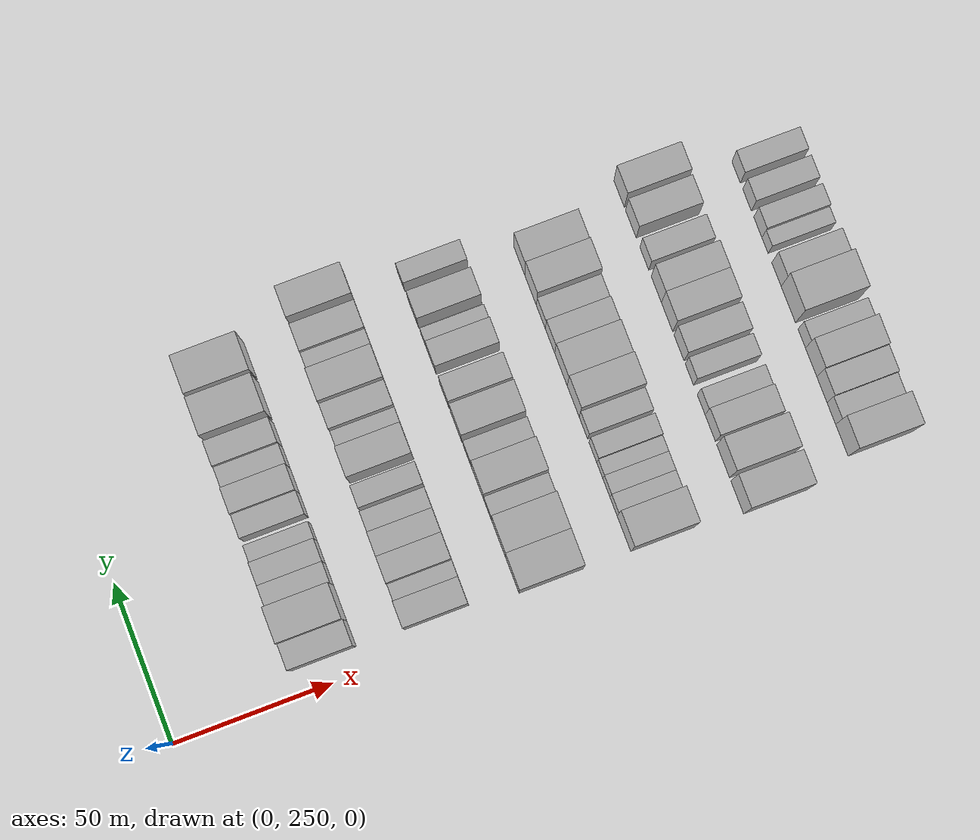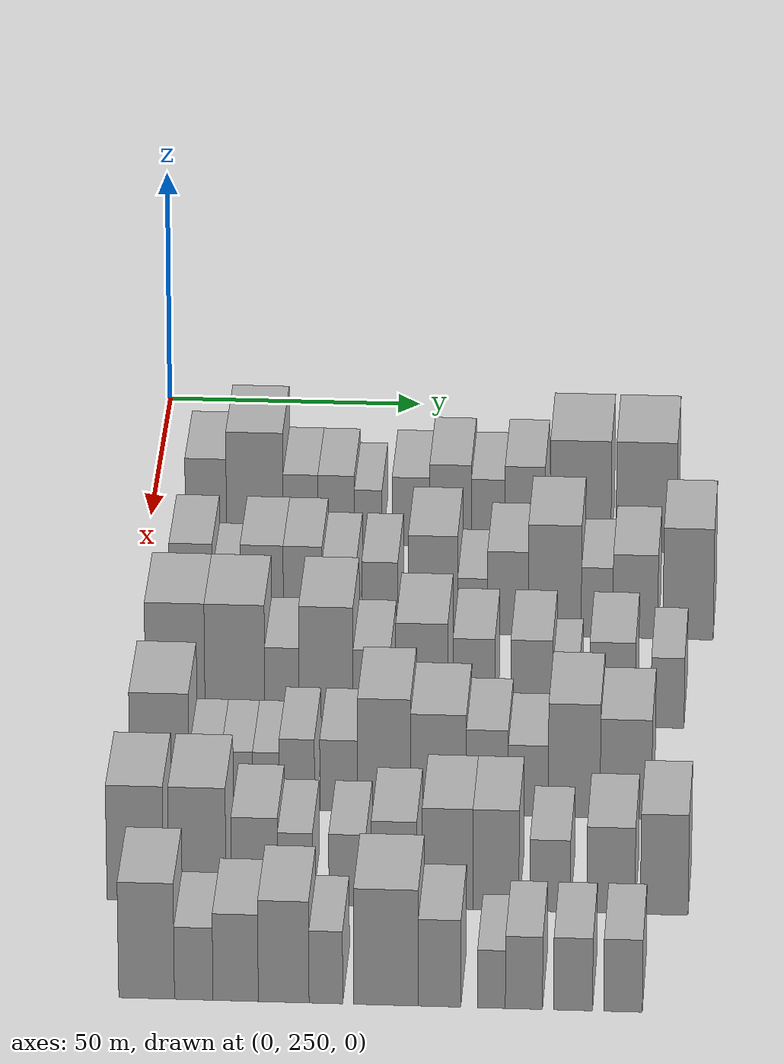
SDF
<sdf version="1.6">
 <world name="default">
  <model name="building_89">
   <static>1</static>
   <pose>50.0000 261.5314 0 0.000000 0.000000 0.000000</pose>
   <link name="link">
    <pose>0 0 9.00 0 0 0</pose>
    <collision name="collision"><geometry><box><size>20.0000 8.0141 18.0000</size></box></geometry></collision>
    <visual name="visual">
     <cast_shadows>0</cast_shadows>
     <geometry><box><size>20.0000 8.0141 18.0000</size></box></geometry>
     <material>
      <script>
       <uri>model://HANNAS_wall/materials/scripts</uri>
       <uri>model://HANNAS_wall/materials/textures</uri>
       <name>vrc/HANNAS_wall</name>
      </script>
     </material>
    </visual>
   </link>
  </model>
  <model name="building_90">
   <static>1</static>
   <pose>50.0000 271.0741 0 0.000000 0.000000 0.000000</pose>
   <link name="link">
    <pose>0 0 12.00 0 0 0</pose>
    <collision name="collision"><geometry><box><size>20.0000 11.0714 24.0000</size></box></geometry></collision>
    <visual name="visual">
     <cast_shadows>0</cast_shadows>
     <geometry><box><size>20.0000 11.0714 24.0000</size></box></geometry>
     <material>
      <script>
       <uri>model://HANNAS_wall/materials/scripts</uri>
       <uri>model://HANNAS_wall/materials/textures</uri>
       <name>vrc/HANNAS_wall</name>
      </script>
     </material>
    </visual>
   </link>
  </model>
  <model name="building_91">
   <static>1</static>
   <pose>50.0000 280.0107 0 0.000000 0.000000 0.000000</pose>
   <link name="link">
    <pose>0 0 7.50 0 0 0</pose>
    <collision name="collision"><geometry><box><size>20.0000 6.8019 15.0000</size></box></geometry></collision>
    <visual name="visual">
     <cast_shadows>0</cast_shadows>
     <geometry><box><size>20.0000 6.8019 15.0000</size></box></geometry>
     <material>
      <script>
       <uri>model://HANNAS_wall/materials/scripts</uri>
       <uri>model://HANNAS_wall/materials/textures</uri>
       <name>vrc/HANNAS_wall</name>
      </script>
     </material>
    </visual>
   </link>
  </model>
  <model name="building_92">
   <static>1</static>
   <pose>50.0000 286.9624 0 0.000000 0.000000 0.000000</pose>
   <link name="link">
    <pose>0 0 7.50 0 0 0</pose>
    <collision name="collision"><geometry><box><size>20.0000 7.1014 15.0000</size></box></geometry></collision>
    <visual name="visual">
     <cast_shadows>0</cast_shadows>
     <geometry><box><size>20.0000 7.1014 15.0000</size></box></geometry>
     <material>
      <script>
       <uri>model://HANNAS_wall/materials/scripts</uri>
       <uri>model://HANNAS_wall/materials/textures</uri>
       <name>vrc/HANNAS_wall</name>
      </script>
     </material>
    </visual>
   </link>
  </model>
  <model name="building_93">
   <static>1</static>
   <pose>50.0000 293.2071 0 0.000000 0.000000 0.000000</pose>
   <link name="link">
    <pose>0 0 6.00 0 0 0</pose>
    <collision name="collision"><geometry><box><size>20.0000 5.3881 12.0000</size></box></geometry></collision>
    <visual name="visual">
     <cast_shadows>0</cast_shadows>
     <geometry><box><size>20.0000 5.3881 12.0000</size></box></geometry>
     <material>
      <script>
       <uri>model://HANNAS_wall/materials/scripts</uri>
       <uri>model://HANNAS_wall/materials/textures</uri>
       <name>vrc/HANNAS_wall</name>
      </script>
     </material>
    </visual>
   </link>
  </model>
  <model name="building_94">
   <static>1</static>
   <pose>50.0000 301.5619 0 0.000000 0.000000 0.000000</pose>
   <link name="link">
    <pose>0 0 7.50 0 0 0</pose>
    <collision name="collision"><geometry><box><size>20.0000 7.3214 15.0000</size></box></geometry></collision>
    <visual name="visual">
     <cast_shadows>0</cast_shadows>
     <geometry><box><size>20.0000 7.3214 15.0000</size></box></geometry>
     <material>
      <script>
       <uri>model://HANNAS_wall/materials/scripts</uri>
       <uri>model://HANNAS_wall/materials/textures</uri>
       <name>vrc/HANNAS_wall</name>
      </script>
     </material>
    </visual>
   </link>
  </model>
  <model name="building_95">
   <static>1</static>
   <pose>50.0000 309.2662 0 0.000000 0.000000 0.000000</pose>
   <link name="link">
    <pose>0 0 9.00 0 0 0</pose>
    <collision name="collision"><geometry><box><size>20.0000 8.0872 18.0000</size></box></geometry></collision>
    <visual name="visual">
     <cast_shadows>0</cast_shadows>
     <geometry><box><size>20.0000 8.0872 18.0000</size></box></geometry>
     <material>
      <script>
       <uri>model://HANNAS_wall/materials/scripts</uri>
       <uri>model://HANNAS_wall/materials/textures</uri>
       <name>vrc/HANNAS_wall</name>
      </script>
     </material>
    </visual>
   </link>
  </model>
  <model name="building_96">
   <static>1</static>
   <pose>50.0000 316.5932 0 0.000000 0.000000 0.000000</pose>
   <link name="link">
    <pose>0 0 7.50 0 0 0</pose>
    <collision name="collision"><geometry><box><size>20.0000 6.5667 15.0000</size></box></geometry></collision>
    <visual name="visual">
     <cast_shadows>0</cast_shadows>
     <geometry><box><size>20.0000 6.5667 15.0000</size></box></geometry>
     <material>
      <script>
       <uri>model://HANNAS_wall/materials/scripts</uri>
       <uri>model://HANNAS_wall/materials/textures</uri>
       <name>vrc/HANNAS_wall</name>
      </script>
     </material>
    </visual>
   </link>
  </model>
  <model name="building_97">
   <static>1</static>
   <pose>50.0000 323.7812 0 0.000000 0.000000 0.000000</pose>
   <link name="link">
    <pose>0 0 9.00 0 0 0</pose>
    <collision name="collision"><geometry><box><size>20.0000 7.8093 18.0000</size></box></geometry></collision>
    <visual name="visual">
     <cast_shadows>0</cast_shadows>
     <geometry><box><size>20.0000 7.8093 18.0000</size></box></geometry>
     <material>
      <script>
       <uri>model://HANNAS_wall/materials/scripts</uri>
       <uri>model://HANNAS_wall/materials/textures</uri>
       <name>vrc/HANNAS_wall</name>
      </script>
     </material>
    </visual>
   </link>
  </model>
  <model name="building_98">
   <static>1</static>
   <pose>50.0000 334.6082 0 0.000000 0.000000 0.000000</pose>
   <link name="link">
    <pose>0 0 12.00 0 0 0</pose>
    <collision name="collision"><geometry><box><size>20.0000 11.8448 24.0000</size></box></geometry></collision>
    <visual name="visual">
     <cast_shadows>0</cast_shadows>
     <geometry><box><size>20.0000 11.8448 24.0000</size></box></geometry>
     <material>
      <script>
       <uri>model://HANNAS_wall/materials/scripts</uri>
       <uri>model://HANNAS_wall/materials/textures</uri>
       <name>vrc/HANNAS_wall</name>
      </script>
     </material>
    </visual>
   </link>
  </model>
  <model name="building_99">
   <static>1</static>
   <pose>50.0000 347.4312 0 0.000000 0.000000 0.000000</pose>
   <link name="link">
    <pose>0 0 12.00 0 0 0</pose>
    <collision name="collision"><geometry><box><size>20.0000 11.8011 24.0000</size></box></geometry></collision>
    <visual name="visual">
     <cast_shadows>0</cast_shadows>
     <geometry><box><size>20.0000 11.8011 24.0000</size></box></geometry>
     <material>
      <script>
       <uri>model://HANNAS_wall/materials/scripts</uri>
       <uri>model://HANNAS_wall/materials/textures</uri>
       <name>vrc/HANNAS_wall</name>
      </script>
     </material>
    </visual>
   </link>
  </model>
  <model name="building_216">
   <static>1</static>
   <pose>85.0000 261.2198 0 0.000000 0.000000 0.000000</pose>
   <link name="link">
    <pose>0 0 9.00 0 0 0</pose>
    <collision name="collision"><geometry><box><size>20.0000 8.2589 18.0000</size></box></geometry></collision>
    <visual name="visual">
     <cast_shadows>0</cast_shadows>
     <geometry><box><size>20.0000 8.2589 18.0000</size></box></geometry>
     <material>
      <script>
       <uri>model://HANNAS_wall/materials/scripts</uri>
       <uri>model://HANNAS_wall/materials/textures</uri>
       <name>vrc/HANNAS_wall</name>
      </script>
     </material>
    </visual>
   </link>
  </model>
  <model name="building_217">
   <static>1</static>
   <pose>85.0000 268.0439 0 0.000000 0.000000 0.000000</pose>
   <link name="link">
    <pose>0 0 6.00 0 0 0</pose>
    <collision name="collision"><geometry><box><size>20.0000 5.3894 12.0000</size></box></geometry></collision>
    <visual name="visual">
     <cast_shadows>0</cast_shadows>
     <geometry><box><size>20.0000 5.3894 12.0000</size></box></geometry>
     <material>
      <script>
       <uri>model://HANNAS_wall/materials/scripts</uri>
       <uri>model://HANNAS_wall/materials/textures</uri>
       <name>vrc/HANNAS_wall</name>
      </script>
     </material>
    </visual>
   </link>
  </model>
  <model name="building_218">
   <static>1</static>
   <pose>85.0000 274.8579 0 0.000000 0.000000 0.000000</pose>
   <link name="link">
    <pose>0 0 9.00 0 0 0</pose>
    <collision name="collision"><geometry><box><size>20.0000 8.2386 18.0000</size></box></geometry></collision>
    <visual name="visual">
     <cast_shadows>0</cast_shadows>
     <geometry><box><size>20.0000 8.2386 18.0000</size></box></geometry>
     <material>
      <script>
       <uri>model://HANNAS_wall/materials/scripts</uri>
       <uri>model://HANNAS_wall/materials/textures</uri>
       <name>vrc/HANNAS_wall</name>
      </script>
     </material>
    </visual>
   </link>
  </model>
  <model name="building_219">
   <static>1</static>
   <pose>85.0000 282.7073 0 0.000000 0.000000 0.000000</pose>
   <link name="link">
    <pose>0 0 9.00 0 0 0</pose>
    <collision name="collision"><geometry><box><size>20.0000 7.4603 18.0000</size></box></geometry></collision>
    <visual name="visual">
     <cast_shadows>0</cast_shadows>
     <geometry><box><size>20.0000 7.4603 18.0000</size></box></geometry>
     <material>
      <script>
       <uri>model://HANNAS_wall/materials/scripts</uri>
       <uri>model://HANNAS_wall/materials/textures</uri>
       <name>vrc/HANNAS_wall</name>
      </script>
     </material>
    </visual>
   </link>
  </model>
  <model name="building_220">
   <static>1</static>
   <pose>85.0000 289.7360 0 0.000000 0.000000 0.000000</pose>
   <link name="link">
    <pose>0 0 7.50 0 0 0</pose>
    <collision name="collision"><geometry><box><size>20.0000 6.5971 15.0000</size></box></geometry></collision>
    <visual name="visual">
     <cast_shadows>0</cast_shadows>
     <geometry><box><size>20.0000 6.5971 15.0000</size></box></geometry>
     <material>
      <script>
       <uri>model://HANNAS_wall/materials/scripts</uri>
       <uri>model://HANNAS_wall/materials/textures</uri>
       <name>vrc/HANNAS_wall</name>
      </script>
     </material>
    </visual>
   </link>
  </model>
  <model name="building_221">
   <static>1</static>
   <pose>85.0000 297.4981 0 0.000000 0.000000 0.000000</pose>
   <link name="link">
    <pose>0 0 7.50 0 0 0</pose>
    <collision name="collision"><geometry><box><size>20.0000 6.9273 15.0000</size></box></geometry></collision>
    <visual name="visual">
     <cast_shadows>0</cast_shadows>
     <geometry><box><size>20.0000 6.9273 15.0000</size></box></geometry>
     <material>
      <script>
       <uri>model://HANNAS_wall/materials/scripts</uri>
       <uri>model://HANNAS_wall/materials/textures</uri>
       <name>vrc/HANNAS_wall</name>
      </script>
     </material>
    </visual>
   </link>
  </model>
  <model name="building_222">
   <static>1</static>
   <pose>85.0000 307.7016 0 0.000000 0.000000 0.000000</pose>
   <link name="link">
    <pose>0 0 10.50 0 0 0</pose>
    <collision name="collision"><geometry><box><size>20.0000 9.4795 21.0000</size></box></geometry></collision>
    <visual name="visual">
     <cast_shadows>0</cast_shadows>
     <geometry><box><size>20.0000 9.4795 21.0000</size></box></geometry>
     <material>
      <script>
       <uri>model://HANNAS_wall/materials/scripts</uri>
       <uri>model://HANNAS_wall/materials/textures</uri>
       <name>vrc/HANNAS_wall</name>
      </script>
     </material>
    </visual>
   </link>
  </model>
  <model name="building_223">
   <static>1</static>
   <pose>85.0000 315.3012 0 0.000000 0.000000 0.000000</pose>
   <link name="link">
    <pose>0 0 6.00 0 0 0</pose>
    <collision name="collision"><geometry><box><size>20.0000 5.7197 12.0000</size></box></geometry></collision>
    <visual name="visual">
     <cast_shadows>0</cast_shadows>
     <geometry><box><size>20.0000 5.7197 12.0000</size></box></geometry>
     <material>
      <script>
       <uri>model://HANNAS_wall/materials/scripts</uri>
       <uri>model://HANNAS_wall/materials/textures</uri>
       <name>vrc/HANNAS_wall</name>
      </script>
     </material>
    </visual>
   </link>
  </model>
  <model name="building_224">
   <static>1</static>
   <pose>85.0000 322.0758 0 0.000000 0.000000 0.000000</pose>
   <link name="link">
    <pose>0 0 9.00 0 0 0</pose>
    <collision name="collision"><geometry><box><size>20.0000 7.8295 18.0000</size></box></geometry></collision>
    <visual name="visual">
     <cast_shadows>0</cast_shadows>
     <geometry><box><size>20.0000 7.8295 18.0000</size></box></geometry>
     <material>
      <script>
       <uri>model://HANNAS_wall/materials/scripts</uri>
       <uri>model://HANNAS_wall/materials/textures</uri>
       <name>vrc/HANNAS_wall</name>
      </script>
     </material>
    </visual>
   </link>
  </model>
  <model name="building_225">
   <static>1</static>
   <pose>85.0000 331.0811 0 0.000000 0.000000 0.000000</pose>
   <link name="link">
    <pose>0 0 12.00 0 0 0</pose>
    <collision name="collision"><geometry><box><size>20.0000 10.1811 24.0000</size></box></geometry></collision>
    <visual name="visual">
     <cast_shadows>0</cast_shadows>
     <geometry><box><size>20.0000 10.1811 24.0000</size></box></geometry>
     <material>
      <script>
       <uri>model://HANNAS_wall/materials/scripts</uri>
       <uri>model://HANNAS_wall/materials/textures</uri>
       <name>vrc/HANNAS_wall</name>
      </script>
     </material>
    </visual>
   </link>
  </model>
  <model name="building_226">
   <static>1</static>
   <pose>85.0000 339.2125 0 0.000000 0.000000 0.000000</pose>
   <link name="link">
    <pose>0 0 7.50 0 0 0</pose>
    <collision name="collision"><geometry><box><size>20.0000 6.0816 15.0000</size></box></geometry></collision>
    <visual name="visual">
     <cast_shadows>0</cast_shadows>
     <geometry><box><size>20.0000 6.0816 15.0000</size></box></geometry>
     <material>
      <script>
       <uri>model://HANNAS_wall/materials/scripts</uri>
       <uri>model://HANNAS_wall/materials/textures</uri>
       <name>vrc/HANNAS_wall</name>
      </script>
     </material>
    </visual>
   </link>
  </model>
  <model name="building_227">
   <static>1</static>
   <pose>85.0000 346.5526 0 0.000000 0.000000 0.000000</pose>
   <link name="link">
    <pose>0 0 9.00 0 0 0</pose>
    <collision name="collision"><geometry><box><size>20.0000 8.5988 18.0000</size></box></geometry></collision>
    <visual name="visual">
     <cast_shadows>0</cast_shadows>
     <geometry><box><size>20.0000 8.5988 18.0000</size></box></geometry>
     <material>
      <script>
       <uri>model://HANNAS_wall/materials/scripts</uri>
       <uri>model://HANNAS_wall/materials/textures</uri>
       <name>vrc/HANNAS_wall</name>
      </script>
     </material>
    </visual>
   </link>
  </model>
  <model name="building_228">
   <static>1</static>
   <pose>85.0000 356.6743 0 0.000000 0.000000 0.000000</pose>
   <link name="link">
    <pose>0 0 12.00 0 0 0</pose>
    <collision name="collision"><geometry><box><size>20.0000 9.6445 24.0000</size></box></geometry></collision>
    <visual name="visual">
     <cast_shadows>0</cast_shadows>
     <geometry><box><size>20.0000 9.6445 24.0000</size></box></geometry>
     <material>
      <script>
       <uri>model://HANNAS_wall/materials/scripts</uri>
       <uri>model://HANNAS_wall/materials/textures</uri>
       <name>vrc/HANNAS_wall</name>
      </script>
     </material>
    </visual>
   </link>
  </model>
  <model name="building_347">
   <static>1</static>
   <pose>120.0000 260.8102 0 0.000000 0.000000 0.000000</pose>
   <link name="link">
    <pose>0 0 12.00 0 0 0</pose>
    <collision name="collision"><geometry><box><size>20.0000 11.2559 24.0000</size></box></geometry></collision>
    <visual name="visual">
     <cast_shadows>0</cast_shadows>
     <geometry><box><size>20.0000 11.2559 24.0000</size></box></geometry>
     <material>
      <script>
       <uri>model://HANNAS_wall/materials/scripts</uri>
       <uri>model://HANNAS_wall/materials/textures</uri>
       <name>vrc/HANNAS_wall</name>
      </script>
     </material>
    </visual>
   </link>
  </model>
  <model name="building_348">
   <static>1</static>
   <pose>120.0000 272.1087 0 0.000000 0.000000 0.000000</pose>
   <link name="link">
    <pose>0 0 12.00 0 0 0</pose>
    <collision name="collision"><geometry><box><size>20.0000 11.3410 24.0000</size></box></geometry></collision>
    <visual name="visual">
     <cast_shadows>0</cast_shadows>
     <geometry><box><size>20.0000 11.3410 24.0000</size></box></geometry>
     <material>
      <script>
       <uri>model://HANNAS_wall/materials/scripts</uri>
       <uri>model://HANNAS_wall/materials/textures</uri>
       <name>vrc/HANNAS_wall</name>
      </script>
     </material>
    </visual>
   </link>
  </model>
  <model name="building_349">
   <static>1</static>
   <pose>120.0000 281.0226 0 0.000000 0.000000 0.000000</pose>
   <link name="link">
    <pose>0 0 7.50 0 0 0</pose>
    <collision name="collision"><geometry><box><size>20.0000 6.4868 15.0000</size></box></geometry></collision>
    <visual name="visual">
     <cast_shadows>0</cast_shadows>
     <geometry><box><size>20.0000 6.4868 15.0000</size></box></geometry>
     <material>
      <script>
       <uri>model://HANNAS_wall/materials/scripts</uri>
       <uri>model://HANNAS_wall/materials/textures</uri>
       <name>vrc/HANNAS_wall</name>
      </script>
     </material>
    </visual>
   </link>
  </model>
  <model name="building_350">
   <static>1</static>
   <pose>120.0000 289.3847 0 0.000000 0.000000 0.000000</pose>
   <link name="link">
    <pose>0 0 12.00 0 0 0</pose>
    <collision name="collision"><geometry><box><size>20.0000 10.2375 24.0000</size></box></geometry></collision>
    <visual name="visual">
     <cast_shadows>0</cast_shadows>
     <geometry><box><size>20.0000 10.2375 24.0000</size></box></geometry>
     <material>
      <script>
       <uri>model://HANNAS_wall/materials/scripts</uri>
       <uri>model://HANNAS_wall/materials/textures</uri>
       <name>vrc/HANNAS_wall</name>
      </script>
     </material>
    </visual>
   </link>
  </model>
  <model name="building_351">
   <static>1</static>
   <pose>120.0000 298.0388 0 0.000000 0.000000 0.000000</pose>
   <link name="link">
    <pose>0 0 7.50 0 0 0</pose>
    <collision name="collision"><geometry><box><size>20.0000 7.0707 15.0000</size></box></geometry></collision>
    <visual name="visual">
     <cast_shadows>0</cast_shadows>
     <geometry><box><size>20.0000 7.0707 15.0000</size></box></geometry>
     <material>
      <script>
       <uri>model://HANNAS_wall/materials/scripts</uri>
       <uri>model://HANNAS_wall/materials/textures</uri>
       <name>vrc/HANNAS_wall</name>
      </script>
     </material>
    </visual>
   </link>
  </model>
  <model name="building_352">
   <static>1</static>
   <pose>120.0000 307.4713 0 0.000000 0.000000 0.000000</pose>
   <link name="link">
    <pose>0 0 10.50 0 0 0</pose>
    <collision name="collision"><geometry><box><size>20.0000 9.7944 21.0000</size></box></geometry></collision>
    <visual name="visual">
     <cast_shadows>0</cast_shadows>
     <geometry><box><size>20.0000 9.7944 21.0000</size></box></geometry>
     <material>
      <script>
       <uri>model://HANNAS_wall/materials/scripts</uri>
       <uri>model://HANNAS_wall/materials/textures</uri>
       <name>vrc/HANNAS_wall</name>
      </script>
     </material>
    </visual>
   </link>
  </model>
  <model name="building_353">
   <static>1</static>
   <pose>120.0000 317.3173 0 0.000000 0.000000 0.000000</pose>
   <link name="link">
    <pose>0 0 9.00 0 0 0</pose>
    <collision name="collision"><geometry><box><size>20.0000 7.8975 18.0000</size></box></geometry></collision>
    <visual name="visual">
     <cast_shadows>0</cast_shadows>
     <geometry><box><size>20.0000 7.8975 18.0000</size></box></geometry>
     <material>
      <script>
       <uri>model://HANNAS_wall/materials/scripts</uri>
       <uri>model://HANNAS_wall/materials/textures</uri>
       <name>vrc/HANNAS_wall</name>
      </script>
     </material>
    </visual>
   </link>
  </model>
  <model name="building_354">
   <static>1</static>
   <pose>120.0000 328.2179 0 0.000000 0.000000 0.000000</pose>
   <link name="link">
    <pose>0 0 9.00 0 0 0</pose>
    <collision name="collision"><geometry><box><size>20.0000 7.9038 18.0000</size></box></geometry></collision>
    <visual name="visual">
     <cast_shadows>0</cast_shadows>
     <geometry><box><size>20.0000 7.9038 18.0000</size></box></geometry>
     <material>
      <script>
       <uri>model://HANNAS_wall/materials/scripts</uri>
       <uri>model://HANNAS_wall/materials/textures</uri>
       <name>vrc/HANNAS_wall</name>
      </script>
     </material>
    </visual>
   </link>
  </model>
  <model name="building_355">
   <static>1</static>
   <pose>120.0000 334.6608 0 0.000000 0.000000 0.000000</pose>
   <link name="link">
    <pose>0 0 6.00 0 0 0</pose>
    <collision name="collision"><geometry><box><size>20.0000 4.9818 12.0000</size></box></geometry></collision>
    <visual name="visual">
     <cast_shadows>0</cast_shadows>
     <geometry><box><size>20.0000 4.9818 12.0000</size></box></geometry>
     <material>
      <script>
       <uri>model://HANNAS_wall/materials/scripts</uri>
       <uri>model://HANNAS_wall/materials/textures</uri>
       <name>vrc/HANNAS_wall</name>
      </script>
     </material>
    </visual>
   </link>
  </model>
  <model name="building_356">
   <static>1</static>
   <pose>120.0000 343.4624 0 0.000000 0.000000 0.000000</pose>
   <link name="link">
    <pose>0 0 9.00 0 0 0</pose>
    <collision name="collision"><geometry><box><size>20.0000 8.6214 18.0000</size></box></geometry></collision>
    <visual name="visual">
     <cast_shadows>0</cast_shadows>
     <geometry><box><size>20.0000 8.6214 18.0000</size></box></geometry>
     <material>
      <script>
       <uri>model://HANNAS_wall/materials/scripts</uri>
       <uri>model://HANNAS_wall/materials/textures</uri>
       <name>vrc/HANNAS_wall</name>
      </script>
     </material>
    </visual>
   </link>
  </model>
  <model name="building_357">
   <static>1</static>
   <pose>120.0000 353.9014 0 0.000000 0.000000 0.000000</pose>
   <link name="link">
    <pose>0 0 7.50 0 0 0</pose>
    <collision name="collision"><geometry><box><size>20.0000 6.2566 15.0000</size></box></geometry></collision>
    <visual name="visual">
     <cast_shadows>0</cast_shadows>
     <geometry><box><size>20.0000 6.2566 15.0000</size></box></geometry>
     <material>
      <script>
       <uri>model://HANNAS_wall/materials/scripts</uri>
       <uri>model://HANNAS_wall/materials/textures</uri>
       <name>vrc/HANNAS_wall</name>
      </script>
     </material>
    </visual>
   </link>
  </model>
  <model name="building_479">
   <static>1</static>
   <pose>155.0000 260.5624 0 0.000000 0.000000 0.000000</pose>
   <link name="link">
    <pose>0 0 12.00 0 0 0</pose>
    <collision name="collision"><geometry><box><size>20.0000 11.0706 24.0000</size></box></geometry></collision>
    <visual name="visual">
     <cast_shadows>0</cast_shadows>
     <geometry><box><size>20.0000 11.0706 24.0000</size></box></geometry>
     <material>
      <script>
       <uri>model://HANNAS_wall/materials/scripts</uri>
       <uri>model://HANNAS_wall/materials/textures</uri>
       <name>vrc/HANNAS_wall</name>
      </script>
     </material>
    </visual>
   </link>
  </model>
  <model name="building_480">
   <static>1</static>
   <pose>155.0000 269.0767 0 0.000000 0.000000 0.000000</pose>
   <link name="link">
    <pose>0 0 6.00 0 0 0</pose>
    <collision name="collision"><geometry><box><size>20.0000 5.9579 12.0000</size></box></geometry></collision>
    <visual name="visual">
     <cast_shadows>0</cast_shadows>
     <geometry><box><size>20.0000 5.9579 12.0000</size></box></geometry>
     <material>
      <script>
       <uri>model://HANNAS_wall/materials/scripts</uri>
       <uri>model://HANNAS_wall/materials/textures</uri>
       <name>vrc/HANNAS_wall</name>
      </script>
     </material>
    </visual>
   </link>
  </model>
  <model name="building_481">
   <static>1</static>
   <pose>155.0000 274.9768 0 0.000000 0.000000 0.000000</pose>
   <link name="link">
    <pose>0 0 6.00 0 0 0</pose>
    <collision name="collision"><geometry><box><size>20.0000 5.8423 12.0000</size></box></geometry></collision>
    <visual name="visual">
     <cast_shadows>0</cast_shadows>
     <geometry><box><size>20.0000 5.8423 12.0000</size></box></geometry>
     <material>
      <script>
       <uri>model://HANNAS_wall/materials/scripts</uri>
       <uri>model://HANNAS_wall/materials/textures</uri>
       <name>vrc/HANNAS_wall</name>
      </script>
     </material>
    </visual>
   </link>
  </model>
  <model name="building_482">
   <static>1</static>
   <pose>155.0000 280.3876 0 0.000000 0.000000 0.000000</pose>
   <link name="link">
    <pose>0 0 6.00 0 0 0</pose>
    <collision name="collision"><geometry><box><size>20.0000 4.9793 12.0000</size></box></geometry></collision>
    <visual name="visual">
     <cast_shadows>0</cast_shadows>
     <geometry><box><size>20.0000 4.9793 12.0000</size></box></geometry>
     <material>
      <script>
       <uri>model://HANNAS_wall/materials/scripts</uri>
       <uri>model://HANNAS_wall/materials/textures</uri>
       <name>vrc/HANNAS_wall</name>
      </script>
     </material>
    </visual>
   </link>
  </model>
  <model name="building_483">
   <static>1</static>
   <pose>155.0000 286.1504 0 0.000000 0.000000 0.000000</pose>
   <link name="link">
    <pose>0 0 7.50 0 0 0</pose>
    <collision name="collision"><geometry><box><size>20.0000 6.5463 15.0000</size></box></geometry></collision>
    <visual name="visual">
     <cast_shadows>0</cast_shadows>
     <geometry><box><size>20.0000 6.5463 15.0000</size></box></geometry>
     <material>
      <script>
       <uri>model://HANNAS_wall/materials/scripts</uri>
       <uri>model://HANNAS_wall/materials/textures</uri>
       <name>vrc/HANNAS_wall</name>
      </script>
     </material>
    </visual>
   </link>
  </model>
  <model name="building_484">
   <static>1</static>
   <pose>155.0000 293.9375 0 0.000000 0.000000 0.000000</pose>
   <link name="link">
    <pose>0 0 7.50 0 0 0</pose>
    <collision name="collision"><geometry><box><size>20.0000 7.0280 15.0000</size></box></geometry></collision>
    <visual name="visual">
     <cast_shadows>0</cast_shadows>
     <geometry><box><size>20.0000 7.0280 15.0000</size></box></geometry>
     <material>
      <script>
       <uri>model://HANNAS_wall/materials/scripts</uri>
       <uri>model://HANNAS_wall/materials/textures</uri>
       <name>vrc/HANNAS_wall</name>
      </script>
     </material>
    </visual>
   </link>
  </model>
  <model name="building_485">
   <static>1</static>
   <pose>155.0000 302.3719 0 0.000000 0.000000 0.000000</pose>
   <link name="link">
    <pose>0 0 12.00 0 0 0</pose>
    <collision name="collision"><geometry><box><size>20.0000 9.8407 24.0000</size></box></geometry></collision>
    <visual name="visual">
     <cast_shadows>0</cast_shadows>
     <geometry><box><size>20.0000 9.8407 24.0000</size></box></geometry>
     <material>
      <script>
       <uri>model://HANNAS_wall/materials/scripts</uri>
       <uri>model://HANNAS_wall/materials/textures</uri>
       <name>vrc/HANNAS_wall</name>
      </script>
     </material>
    </visual>
   </link>
  </model>
  <model name="building_486">
   <static>1</static>
   <pose>155.0000 312.4813 0 0.000000 0.000000 0.000000</pose>
   <link name="link">
    <pose>0 0 10.50 0 0 0</pose>
    <collision name="collision"><geometry><box><size>20.0000 10.3783 21.0000</size></box></geometry></collision>
    <visual name="visual">
     <cast_shadows>0</cast_shadows>
     <geometry><box><size>20.0000 10.3783 21.0000</size></box></geometry>
     <material>
      <script>
       <uri>model://HANNAS_wall/materials/scripts</uri>
       <uri>model://HANNAS_wall/materials/textures</uri>
       <name>vrc/HANNAS_wall</name>
      </script>
     </material>
    </visual>
   </link>
  </model>
  <model name="building_487">
   <static>1</static>
   <pose>155.0000 321.5575 0 0.000000 0.000000 0.000000</pose>
   <link name="link">
    <pose>0 0 9.00 0 0 0</pose>
    <collision name="collision"><geometry><box><size>20.0000 7.7742 18.0000</size></box></geometry></collision>
    <visual name="visual">
     <cast_shadows>0</cast_shadows>
     <geometry><box><size>20.0000 7.7742 18.0000</size></box></geometry>
     <material>
      <script>
       <uri>model://HANNAS_wall/materials/scripts</uri>
       <uri>model://HANNAS_wall/materials/textures</uri>
       <name>vrc/HANNAS_wall</name>
      </script>
     </material>
    </visual>
   </link>
  </model>
  <model name="building_488">
   <static>1</static>
   <pose>155.0000 329.1755 0 0.000000 0.000000 0.000000</pose>
   <link name="link">
    <pose>0 0 7.50 0 0 0</pose>
    <collision name="collision"><geometry><box><size>20.0000 7.4618 15.0000</size></box></geometry></collision>
    <visual name="visual">
     <cast_shadows>0</cast_shadows>
     <geometry><box><size>20.0000 7.4618 15.0000</size></box></geometry>
     <material>
      <script>
       <uri>model://HANNAS_wall/materials/scripts</uri>
       <uri>model://HANNAS_wall/materials/textures</uri>
       <name>vrc/HANNAS_wall</name>
      </script>
     </material>
    </visual>
   </link>
  </model>
  <model name="building_489">
   <static>1</static>
   <pose>155.0000 337.7281 0 0.000000 0.000000 0.000000</pose>
   <link name="link">
    <pose>0 0 12.00 0 0 0</pose>
    <collision name="collision"><geometry><box><size>20.0000 9.6433 24.0000</size></box></geometry></collision>
    <visual name="visual">
     <cast_shadows>0</cast_shadows>
     <geometry><box><size>20.0000 9.6433 24.0000</size></box></geometry>
     <material>
      <script>
       <uri>model://HANNAS_wall/materials/scripts</uri>
       <uri>model://HANNAS_wall/materials/textures</uri>
       <name>vrc/HANNAS_wall</name>
      </script>
     </material>
    </visual>
   </link>
  </model>
  <model name="building_490">
   <static>1</static>
   <pose>155.0000 347.3320 0 0.000000 0.000000 0.000000</pose>
   <link name="link">
    <pose>0 0 10.50 0 0 0</pose>
    <collision name="collision"><geometry><box><size>20.0000 9.5646 21.0000</size></box></geometry></collision>
    <visual name="visual">
     <cast_shadows>0</cast_shadows>
     <geometry><box><size>20.0000 9.5646 21.0000</size></box></geometry>
     <material>
      <script>
       <uri>model://HANNAS_wall/materials/scripts</uri>
       <uri>model://HANNAS_wall/materials/textures</uri>
       <name>vrc/HANNAS_wall</name>
      </script>
     </material>
    </visual>
   </link>
  </model>
  <model name="building_603">
   <static>1</static>
   <pose>190.0000 258.7516 0 0.000000 0.000000 0.000000</pose>
   <link name="link">
    <pose>0 0 12.00 0 0 0</pose>
    <collision name="collision"><geometry><box><size>20.0000 10.3953 24.0000</size></box></geometry></collision>
    <visual name="visual">
     <cast_shadows>0</cast_shadows>
     <geometry><box><size>20.0000 10.3953 24.0000</size></box></geometry>
     <material>
      <script>
       <uri>model://HANNAS_wall/materials/scripts</uri>
       <uri>model://HANNAS_wall/materials/textures</uri>
       <name>vrc/HANNAS_wall</name>
      </script>
     </material>
    </visual>
   </link>
  </model>
  <model name="building_604">
   <static>1</static>
   <pose>190.0000 270.1864 0 0.000000 0.000000 0.000000</pose>
   <link name="link">
    <pose>0 0 12.00 0 0 0</pose>
    <collision name="collision"><geometry><box><size>20.0000 10.4743 24.0000</size></box></geometry></collision>
    <visual name="visual">
     <cast_shadows>0</cast_shadows>
     <geometry><box><size>20.0000 10.4743 24.0000</size></box></geometry>
     <material>
      <script>
       <uri>model://HANNAS_wall/materials/scripts</uri>
       <uri>model://HANNAS_wall/materials/textures</uri>
       <name>vrc/HANNAS_wall</name>
      </script>
     </material>
    </visual>
   </link>
  </model>
  <model name="building_605">
   <static>1</static>
   <pose>190.0000 280.6517 0 0.000000 0.000000 0.000000</pose>
   <link name="link">
    <pose>0 0 9.00 0 0 0</pose>
    <collision name="collision"><geometry><box><size>20.0000 8.4562 18.0000</size></box></geometry></collision>
    <visual name="visual">
     <cast_shadows>0</cast_shadows>
     <geometry><box><size>20.0000 8.4562 18.0000</size></box></geometry>
     <material>
      <script>
       <uri>model://HANNAS_wall/materials/scripts</uri>
       <uri>model://HANNAS_wall/materials/textures</uri>
       <name>vrc/HANNAS_wall</name>
      </script>
     </material>
    </visual>
   </link>
  </model>
  <model name="building_606">
   <static>1</static>
   <pose>190.0000 288.0836 0 0.000000 0.000000 0.000000</pose>
   <link name="link">
    <pose>0 0 7.50 0 0 0</pose>
    <collision name="collision"><geometry><box><size>20.0000 6.4076 15.0000</size></box></geometry></collision>
    <visual name="visual">
     <cast_shadows>0</cast_shadows>
     <geometry><box><size>20.0000 6.4076 15.0000</size></box></geometry>
     <material>
      <script>
       <uri>model://HANNAS_wall/materials/scripts</uri>
       <uri>model://HANNAS_wall/materials/textures</uri>
       <name>vrc/HANNAS_wall</name>
      </script>
     </material>
    </visual>
   </link>
  </model>
  <model name="building_607">
   <static>1</static>
   <pose>190.0000 297.6779 0 0.000000 0.000000 0.000000</pose>
   <link name="link">
    <pose>0 0 7.50 0 0 0</pose>
    <collision name="collision"><geometry><box><size>20.0000 6.7810 15.0000</size></box></geometry></collision>
    <visual name="visual">
     <cast_shadows>0</cast_shadows>
     <geometry><box><size>20.0000 6.7810 15.0000</size></box></geometry>
     <material>
      <script>
       <uri>model://HANNAS_wall/materials/scripts</uri>
       <uri>model://HANNAS_wall/materials/textures</uri>
       <name>vrc/HANNAS_wall</name>
      </script>
     </material>
    </visual>
   </link>
  </model>
  <model name="building_608">
   <static>1</static>
   <pose>190.0000 306.2211 0 0.000000 0.000000 0.000000</pose>
   <link name="link">
    <pose>0 0 9.00 0 0 0</pose>
    <collision name="collision"><geometry><box><size>20.0000 8.3055 18.0000</size></box></geometry></collision>
    <visual name="visual">
     <cast_shadows>0</cast_shadows>
     <geometry><box><size>20.0000 8.3055 18.0000</size></box></geometry>
     <material>
      <script>
       <uri>model://HANNAS_wall/materials/scripts</uri>
       <uri>model://HANNAS_wall/materials/textures</uri>
       <name>vrc/HANNAS_wall</name>
      </script>
     </material>
    </visual>
   </link>
  </model>
  <model name="building_609">
   <static>1</static>
   <pose>190.0000 316.0048 0 0.000000 0.000000 0.000000</pose>
   <link name="link">
    <pose>0 0 10.50 0 0 0</pose>
    <collision name="collision"><geometry><box><size>20.0000 9.2619 21.0000</size></box></geometry></collision>
    <visual name="visual">
     <cast_shadows>0</cast_shadows>
     <geometry><box><size>20.0000 9.2619 21.0000</size></box></geometry>
     <material>
      <script>
       <uri>model://HANNAS_wall/materials/scripts</uri>
       <uri>model://HANNAS_wall/materials/textures</uri>
       <name>vrc/HANNAS_wall</name>
      </script>
     </material>
    </visual>
   </link>
  </model>
  <model name="building_610">
   <static>1</static>
   <pose>190.0000 324.8538 0 0.000000 0.000000 0.000000</pose>
   <link name="link">
    <pose>0 0 10.50 0 0 0</pose>
    <collision name="collision"><geometry><box><size>20.0000 8.4361 21.0000</size></box></geometry></collision>
    <visual name="visual">
     <cast_shadows>0</cast_shadows>
     <geometry><box><size>20.0000 8.4361 21.0000</size></box></geometry>
     <material>
      <script>
       <uri>model://HANNAS_wall/materials/scripts</uri>
       <uri>model://HANNAS_wall/materials/textures</uri>
       <name>vrc/HANNAS_wall</name>
      </script>
     </material>
    </visual>
   </link>
  </model>
  <model name="building_611">
   <static>1</static>
   <pose>190.0000 334.7727 0 0.000000 0.000000 0.000000</pose>
   <link name="link">
    <pose>0 0 7.50 0 0 0</pose>
    <collision name="collision"><geometry><box><size>20.0000 7.4016 15.0000</size></box></geometry></collision>
    <visual name="visual">
     <cast_shadows>0</cast_shadows>
     <geometry><box><size>20.0000 7.4016 15.0000</size></box></geometry>
     <material>
      <script>
       <uri>model://HANNAS_wall/materials/scripts</uri>
       <uri>model://HANNAS_wall/materials/textures</uri>
       <name>vrc/HANNAS_wall</name>
      </script>
     </material>
    </visual>
   </link>
  </model>
  <model name="building_612">
   <static>1</static>
   <pose>190.0000 345.8840 0 0.000000 0.000000 0.000000</pose>
   <link name="link">
    <pose>0 0 9.00 0 0 0</pose>
    <collision name="collision"><geometry><box><size>20.0000 8.8210 18.0000</size></box></geometry></collision>
    <visual name="visual">
     <cast_shadows>0</cast_shadows>
     <geometry><box><size>20.0000 8.8210 18.0000</size></box></geometry>
     <material>
      <script>
       <uri>model://HANNAS_wall/materials/scripts</uri>
       <uri>model://HANNAS_wall/materials/textures</uri>
       <name>vrc/HANNAS_wall</name>
      </script>
     </material>
    </visual>
   </link>
  </model>
  <model name="building_613">
   <static>1</static>
   <pose>190.0000 355.6593 0 0.000000 0.000000 0.000000</pose>
   <link name="link">
    <pose>0 0 10.50 0 0 0</pose>
    <collision name="collision"><geometry><box><size>20.0000 8.7297 21.0000</size></box></geometry></collision>
    <visual name="visual">
     <cast_shadows>0</cast_shadows>
     <geometry><box><size>20.0000 8.7297 21.0000</size></box></geometry>
     <material>
      <script>
       <uri>model://HANNAS_wall/materials/scripts</uri>
       <uri>model://HANNAS_wall/materials/textures</uri>
       <name>vrc/HANNAS_wall</name>
      </script>
     </material>
    </visual>
   </link>
  </model>
  <model name="building_730">
   <static>1</static>
   <pose>225.0000 263.5586 0 0.000000 0.000000 0.000000</pose>
   <link name="link">
    <pose>0 0 12.00 0 0 0</pose>
    <collision name="collision"><geometry><box><size>20.0000 10.0605 24.0000</size></box></geometry></collision>
    <visual name="visual">
     <cast_shadows>0</cast_shadows>
     <geometry><box><size>20.0000 10.0605 24.0000</size></box></geometry>
     <material>
      <script>
       <uri>model://HANNAS_wall/materials/scripts</uri>
       <uri>model://HANNAS_wall/materials/textures</uri>
       <name>vrc/HANNAS_wall</name>
      </script>
     </material>
    </visual>
   </link>
  </model>
  <model name="building_731">
   <static>1</static>
   <pose>225.0000 272.0640 0 0.000000 0.000000 0.000000</pose>
   <link name="link">
    <pose>0 0 7.50 0 0 0</pose>
    <collision name="collision"><geometry><box><size>20.0000 6.9503 15.0000</size></box></geometry></collision>
    <visual name="visual">
     <cast_shadows>0</cast_shadows>
     <geometry><box><size>20.0000 6.9503 15.0000</size></box></geometry>
     <material>
      <script>
       <uri>model://HANNAS_wall/materials/scripts</uri>
       <uri>model://HANNAS_wall/materials/textures</uri>
       <name>vrc/HANNAS_wall</name>
      </script>
     </material>
    </visual>
   </link>
  </model>
  <model name="building_732">
   <static>1</static>
   <pose>225.0000 279.6292 0 0.000000 0.000000 0.000000</pose>
   <link name="link">
    <pose>0 0 9.00 0 0 0</pose>
    <collision name="collision"><geometry><box><size>20.0000 8.1801 18.0000</size></box></geometry></collision>
    <visual name="visual">
     <cast_shadows>0</cast_shadows>
     <geometry><box><size>20.0000 8.1801 18.0000</size></box></geometry>
     <material>
      <script>
       <uri>model://HANNAS_wall/materials/scripts</uri>
       <uri>model://HANNAS_wall/materials/textures</uri>
       <name>vrc/HANNAS_wall</name>
      </script>
     </material>
    </visual>
   </link>
  </model>
  <model name="building_733">
   <static>1</static>
   <pose>225.0000 288.2989 0 0.000000 0.000000 0.000000</pose>
   <link name="link">
    <pose>0 0 10.50 0 0 0</pose>
    <collision name="collision"><geometry><box><size>20.0000 9.1592 21.0000</size></box></geometry></collision>
    <visual name="visual">
     <cast_shadows>0</cast_shadows>
     <geometry><box><size>20.0000 9.1592 21.0000</size></box></geometry>
     <material>
      <script>
       <uri>model://HANNAS_wall/materials/scripts</uri>
       <uri>model://HANNAS_wall/materials/textures</uri>
       <name>vrc/HANNAS_wall</name>
      </script>
     </material>
    </visual>
   </link>
  </model>
  <model name="building_734">
   <static>1</static>
   <pose>225.0000 295.9139 0 0.000000 0.000000 0.000000</pose>
   <link name="link">
    <pose>0 0 7.50 0 0 0</pose>
    <collision name="collision"><geometry><box><size>20.0000 6.0709 15.0000</size></box></geometry></collision>
    <visual name="visual">
     <cast_shadows>0</cast_shadows>
     <geometry><box><size>20.0000 6.0709 15.0000</size></box></geometry>
     <material>
      <script>
       <uri>model://HANNAS_wall/materials/scripts</uri>
       <uri>model://HANNAS_wall/materials/textures</uri>
       <name>vrc/HANNAS_wall</name>
      </script>
     </material>
    </visual>
   </link>
  </model>
  <model name="building_735">
   <static>1</static>
   <pose>225.0000 306.7636 0 0.000000 0.000000 0.000000</pose>
   <link name="link">
    <pose>0 0 12.00 0 0 0</pose>
    <collision name="collision"><geometry><box><size>20.0000 11.6284 24.0000</size></box></geometry></collision>
    <visual name="visual">
     <cast_shadows>0</cast_shadows>
     <geometry><box><size>20.0000 11.6284 24.0000</size></box></geometry>
     <material>
      <script>
       <uri>model://HANNAS_wall/materials/scripts</uri>
       <uri>model://HANNAS_wall/materials/textures</uri>
       <name>vrc/HANNAS_wall</name>
      </script>
     </material>
    </visual>
   </link>
  </model>
  <model name="building_736">
   <static>1</static>
   <pose>225.0000 316.4055 0 0.000000 0.000000 0.000000</pose>
   <link name="link">
    <pose>0 0 9.00 0 0 0</pose>
    <collision name="collision"><geometry><box><size>20.0000 7.6554 18.0000</size></box></geometry></collision>
    <visual name="visual">
     <cast_shadows>0</cast_shadows>
     <geometry><box><size>20.0000 7.6554 18.0000</size></box></geometry>
     <material>
      <script>
       <uri>model://HANNAS_wall/materials/scripts</uri>
       <uri>model://HANNAS_wall/materials/textures</uri>
       <name>vrc/HANNAS_wall</name>
      </script>
     </material>
    </visual>
   </link>
  </model>
  <model name="building_737">
   <static>1</static>
   <pose>225.0000 325.7475 0 0.000000 0.000000 0.000000</pose>
   <link name="link">
    <pose>0 0 6.00 0 0 0</pose>
    <collision name="collision"><geometry><box><size>20.0000 5.0285 12.0000</size></box></geometry></collision>
    <visual name="visual">
     <cast_shadows>0</cast_shadows>
     <geometry><box><size>20.0000 5.0285 12.0000</size></box></geometry>
     <material>
      <script>
       <uri>model://HANNAS_wall/materials/scripts</uri>
       <uri>model://HANNAS_wall/materials/textures</uri>
       <name>vrc/HANNAS_wall</name>
      </script>
     </material>
    </visual>
   </link>
  </model>
  <model name="building_738">
   <static>1</static>
   <pose>225.0000 331.6056 0 0.000000 0.000000 0.000000</pose>
   <link name="link">
    <pose>0 0 7.50 0 0 0</pose>
    <collision name="collision"><geometry><box><size>20.0000 6.6877 15.0000</size></box></geometry></collision>
    <visual name="visual">
     <cast_shadows>0</cast_shadows>
     <geometry><box><size>20.0000 6.6877 15.0000</size></box></geometry>
     <material>
      <script>
       <uri>model://HANNAS_wall/materials/scripts</uri>
       <uri>model://HANNAS_wall/materials/textures</uri>
       <name>vrc/HANNAS_wall</name>
      </script>
     </material>
    </visual>
   </link>
  </model>
  <model name="building_739">
   <static>1</static>
   <pose>225.0000 340.4538 0 0.000000 0.000000 0.000000</pose>
   <link name="link">
    <pose>0 0 7.50 0 0 0</pose>
    <collision name="collision"><geometry><box><size>20.0000 7.0088 15.0000</size></box></geometry></collision>
    <visual name="visual">
     <cast_shadows>0</cast_shadows>
     <geometry><box><size>20.0000 7.0088 15.0000</size></box></geometry>
     <material>
      <script>
       <uri>model://HANNAS_wall/materials/scripts</uri>
       <uri>model://HANNAS_wall/materials/textures</uri>
       <name>vrc/HANNAS_wall</name>
      </script>
     </material>
    </visual>
   </link>
  </model>
  <model name="building_740">
   <static>1</static>
   <pose>225.0000 349.4362 0 0.000000 0.000000 0.000000</pose>
   <link name="link">
    <pose>0 0 7.50 0 0 0</pose>
    <collision name="collision"><geometry><box><size>20.0000 6.9560 15.0000</size></box></geometry></collision>
    <visual name="visual">
     <cast_shadows>0</cast_shadows>
     <geometry><box><size>20.0000 6.9560 15.0000</size></box></geometry>
     <material>
      <script>
       <uri>model://HANNAS_wall/materials/scripts</uri>
       <uri>model://HANNAS_wall/materials/textures</uri>
       <name>vrc/HANNAS_wall</name>
      </script>
     </material>
    </visual>
   </link>
  </model>
 </world>
</sdf>
